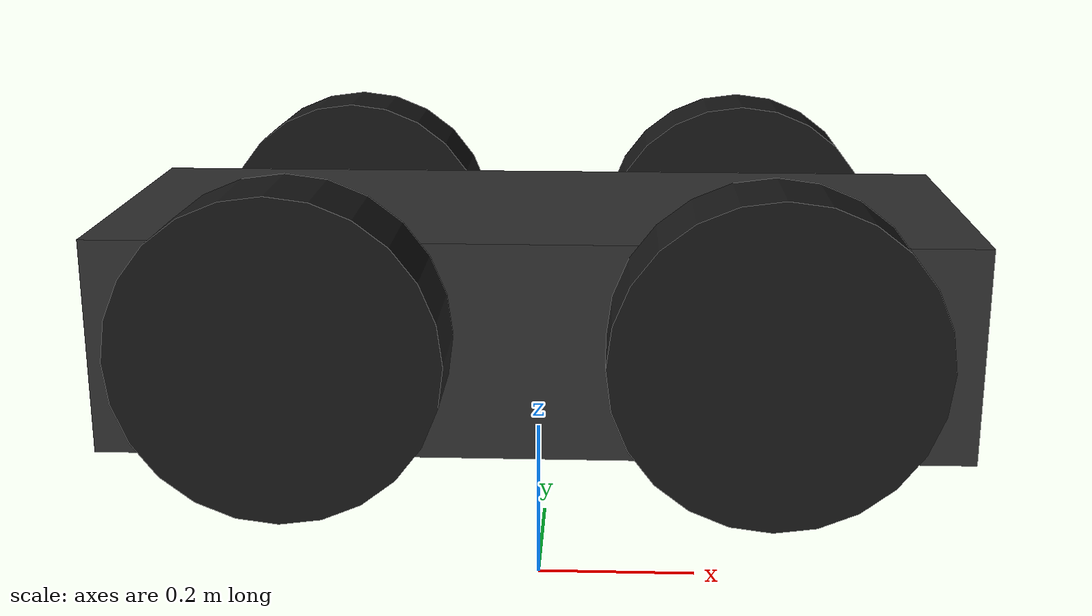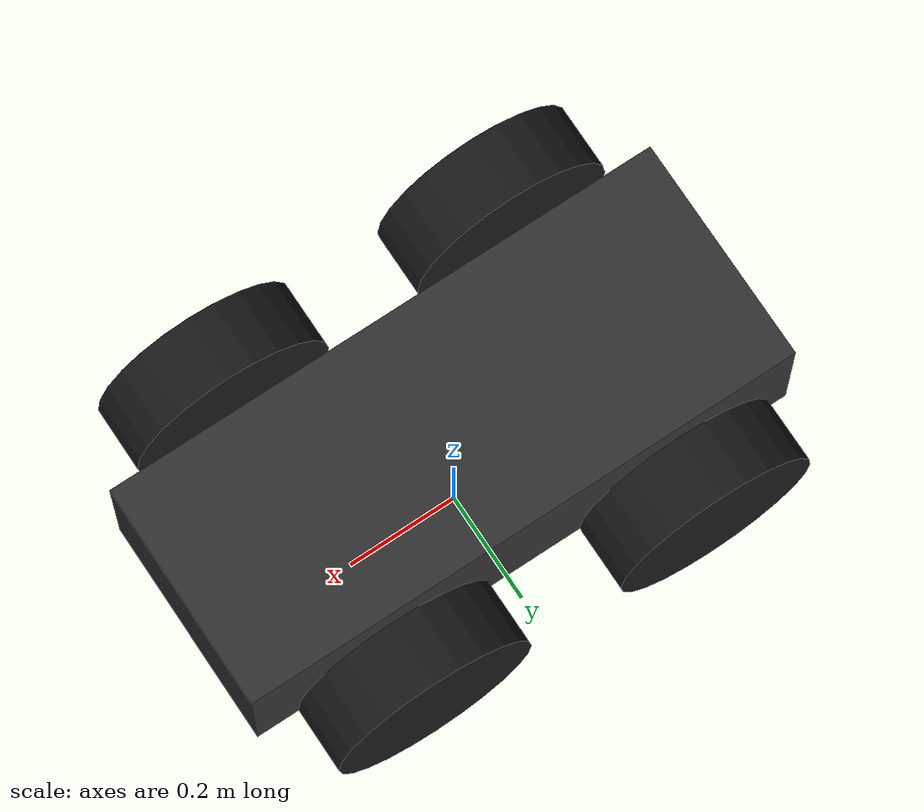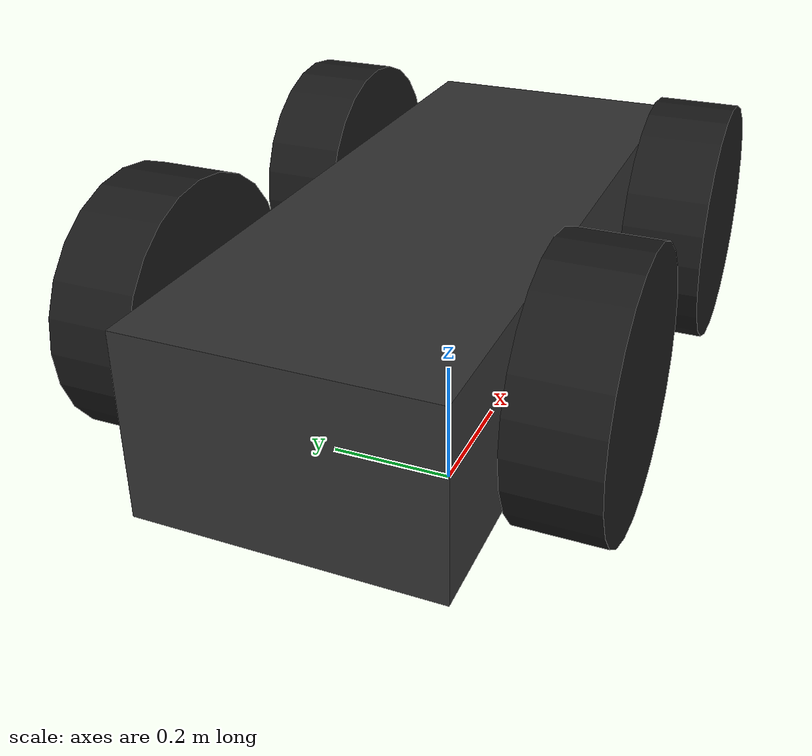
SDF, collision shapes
<?xml version="1.0" ?>
<sdf version="1.8">

  <model name="husky">
    <pose>0 0 0.3 0 0 0</pose>

    <link name="base_link">
      <inertial>
        <mass>33.85</mass>
        <inertia>
          <ixx>2.2</ixx> <iyy>3.4</iyy> <izz>2.1</izz>
          <ixy>0</ixy> <ixz>0</ixz> <iyz>0</iyz>
        </inertia>
      </inertial>

      <collision name="base_collision">
        <pose>0 0 0.06 0 0 0</pose>
        <geometry>
          <box>
            <size>1.0 0.40 0.25</size>
          </box>
        </geometry>
      </collision>

      <visual name="base_visual">
        <geometry><mesh><uri>model://husky/meshes/base_link.stl</uri></mesh></geometry>
        <material><ambient>0.2 0.2 0.2 1</ambient><diffuse>0.2 0.2 0.2 1</diffuse></material>
      </visual>
      <visual name="top_plate">
        <geometry><mesh><uri>model://husky/meshes/top_plate.stl</uri></mesh></geometry>
        <material><ambient>0.9 0.8 0.1 1</ambient><diffuse>0.9 0.8 0.1 1</diffuse></material>
      </visual>
    </link>

    <link name="front_left_wheel">
      <pose>0.26 0.285 0.09 0 0 0</pose>
      <inertial>
        <mass>2.637</mass>
        <inertia>
          <ixx>0.02467</ixx> <ixy>0</ixy> <ixz>0</ixz>
          <iyy>0.04411</iyy> <iyz>0</iyz> <izz>0.02467</izz>
        </inertia>
      </inertial>
      <collision name="collision">
        <pose>0 0 0 1.5708 0 0</pose>
        <geometry>
          <cylinder><radius>0.177</radius><length>0.114</length></cylinder>
        </geometry>
        <surface>
          <friction>
            <ode><mu>1.0</mu><mu2>1.0</mu2></ode>
          </friction>
        </surface>
      </collision>
      <visual name="visual">
        <geometry><mesh><uri>model://husky/meshes/wheel.stl</uri></mesh></geometry>
        <material><ambient>0.1 0.1 0.1 1</ambient><diffuse>0.1 0.1 0.1 1</diffuse></material>
      </visual>
    </link>

    <joint name="front_left_joint" type="revolute">
      <parent>base_link</parent>
      <child>front_left_wheel</child>
      <axis>
        <xyz>0 1 0</xyz>
        <limit><lower>-1e16</lower><upper>1e16</upper></limit>
      </axis>
    </joint>

    <link name="front_right_wheel">
      <pose>0.26 -0.285 0.09 0 0 0</pose>
      <inertial>
        <mass>2.637</mass>
        <inertia>
          <ixx>0.02467</ixx> <ixy>0</ixy> <ixz>0</ixz>
          <iyy>0.04411</iyy> <iyz>0</iyz> <izz>0.02467</izz>
        </inertia>
      </inertial>
      <collision name="collision">
        <pose>0 0 0 1.5708 0 0</pose>
        <geometry>
          <cylinder><radius>0.177</radius><length>0.114</length></cylinder>
        </geometry>
        <surface>
          <friction>
            <ode><mu>1.0</mu><mu2>1.0</mu2></ode>
          </friction>
        </surface>
      </collision>
      <visual name="visual">
        <geometry><mesh><uri>model://husky/meshes/wheel.stl</uri></mesh></geometry>
        <material><ambient>0.1 0.1 0.1 1</ambient><diffuse>0.1 0.1 0.1 1</diffuse></material>
      </visual>
    </link>

    <joint name="front_right_joint" type="revolute">
      <parent>base_link</parent>
      <child>front_right_wheel</child>
      <axis>
        <xyz>0 1 0</xyz>
        <limit><lower>-1e16</lower><upper>1e16</upper></limit>
      </axis>
    </joint>

    <link name="back_left_wheel">
      <pose>-0.26 0.285 0.09 0 0 0</pose>
      <inertial>
        <mass>2.637</mass>
        <inertia>
          <ixx>0.02467</ixx> <ixy>0</ixy> <ixz>0</ixz>
          <iyy>0.04411</iyy> <iyz>0</iyz> <izz>0.02467</izz>
        </inertia>
      </inertial>
      <collision name="collision">
        <pose>0 0 0 1.5708 0 0</pose>
        <geometry>
          <cylinder><radius>0.177</radius><length>0.114</length></cylinder>
        </geometry>
        <surface>
          <friction>
            <ode><mu>1.0</mu><mu2>1.0</mu2></ode>
          </friction>
        </surface>
      </collision>
      <visual name="visual">
        <geometry><mesh><uri>model://husky/meshes/wheel.stl</uri></mesh></geometry>
        <material><ambient>0.1 0.1 0.1 1</ambient><diffuse>0.1 0.1 0.1 1</diffuse></material>
      </visual>
    </link>

    <joint name="back_left_joint" type="revolute">
      <parent>base_link</parent>
      <child>back_left_wheel</child>
      <axis>
        <xyz>0 1 0</xyz>
        <limit><lower>-1e16</lower><upper>1e16</upper></limit>
      </axis>
    </joint>

    <link name="back_right_wheel">
      <pose>-0.26 -0.285 0.09 0 0 0</pose>
      <inertial>
        <mass>2.637</mass>
        <inertia>
          <ixx>0.02467</ixx> <ixy>0</ixy> <ixz>0</ixz>
          <iyy>0.04411</iyy> <iyz>0</iyz> <izz>0.02467</izz>
        </inertia>
      </inertial>
      <collision name="collision">
        <pose>0 0 0 1.5708 0 0</pose>
        <geometry>
          <cylinder><radius>0.177</radius><length>0.114</length></cylinder>
        </geometry>
        <surface>
          <friction>
            <ode><mu>1.0</mu><mu2>1.0</mu2></ode>
          </friction>
        </surface>
      </collision>
      <visual name="visual">
        <geometry><mesh><uri>model://husky/meshes/wheel.stl</uri></mesh></geometry>
        <material><ambient>0.1 0.1 0.1 1</ambient><diffuse>0.1 0.1 0.1 1</diffuse></material>
      </visual>
    </link>

    <joint name="back_right_joint" type="revolute">
      <parent>base_link</parent>
      <child>back_right_wheel</child>
      <axis>
        <xyz>0 1 0</xyz>
        <limit><lower>-1e16</lower><upper>1e16</upper></limit>
      </axis>
    </joint>

    <plugin
      filename="libignition-gazebo-diff-drive-system.so"
      name="gz::sim::systems::DiffDrive">
      <left_joint>front_left_joint</left_joint>
      <left_joint>back_left_joint</left_joint>
      <right_joint>front_right_joint</right_joint>
      <right_joint>back_right_joint</right_joint>
      <wheel_separation>0.57</wheel_separation>
      <wheel_radius>0.177</wheel_radius>
      <topic>/cmd_vel</topic>
      <odom_topic>/odom</odom_topic>
      <base_frame>base_link</base_frame>
      <odom_frame>odom</odom_frame>
      <min_acceleration>-5.0</min_acceleration>
      <max_acceleration>5.0</max_acceleration>
    </plugin>

  </model>
</sdf>
